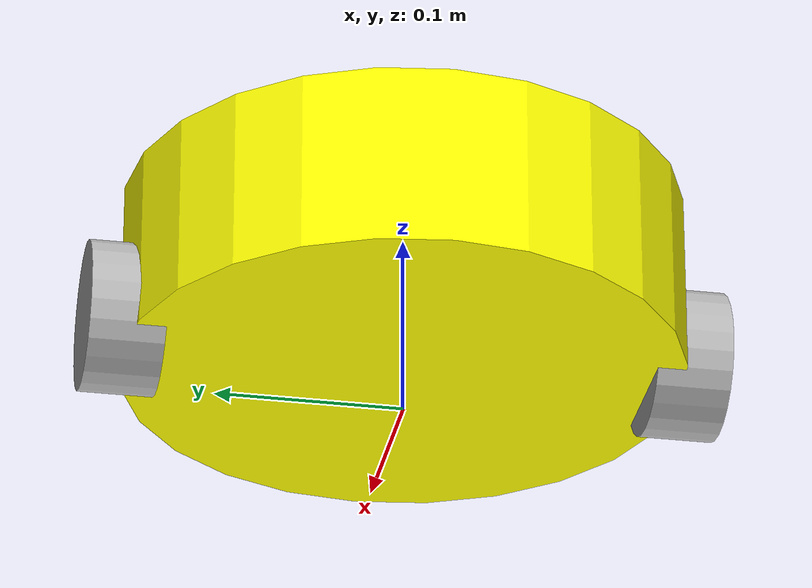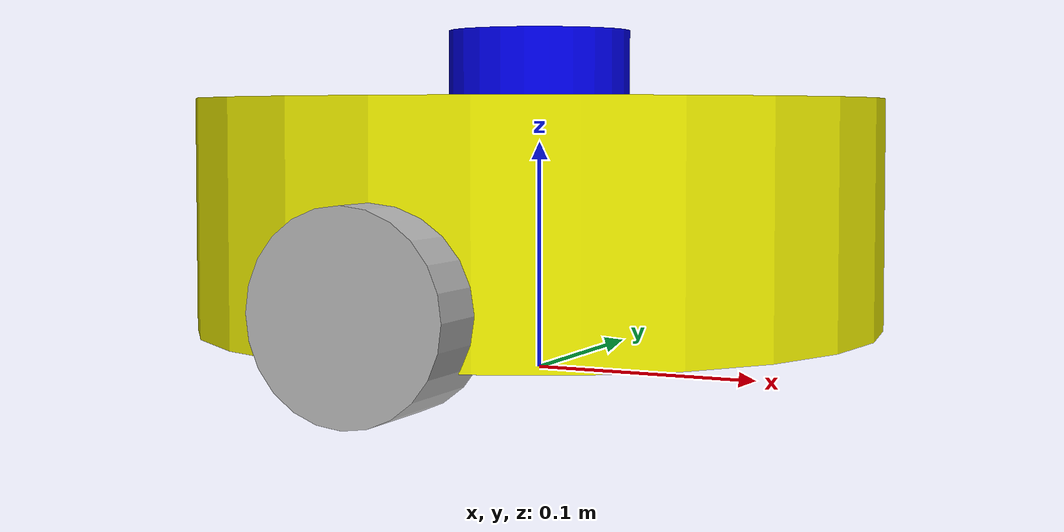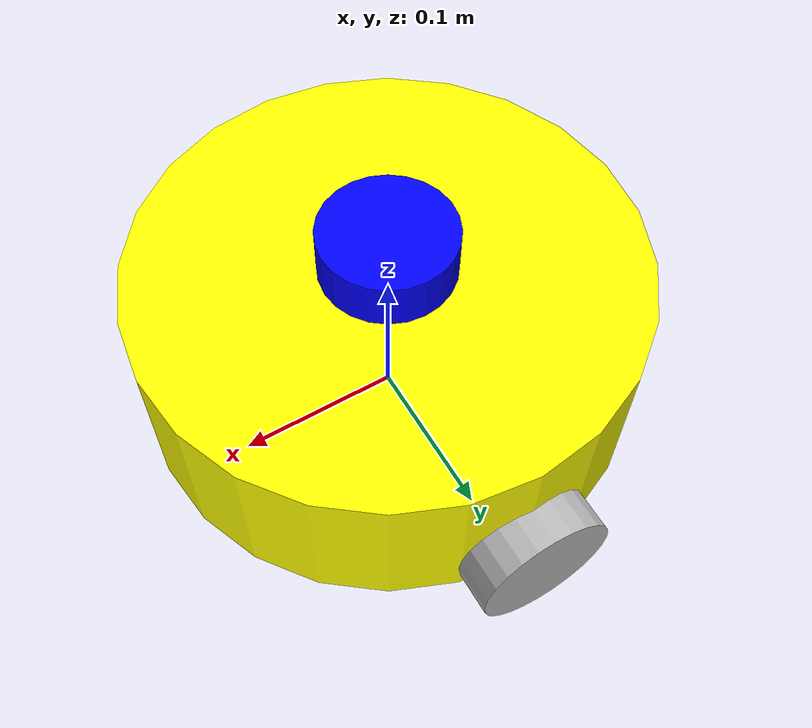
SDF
<?xml version="1.0"?>
<sdf version='1.11'>
  <model name='dx_bot'>

    <link name='footprint'>
      <pose>0 0 0 0 0 0</pose>
      <inertial>
        <mass>2</mass>
        <inertia>
          <ixx>0.0141</ixx>
          <iyy>0.0104</iyy>
          <izz>0.0154</izz>
        </inertia>
      </inertial>

      <collision name='base_collision'>
        <pose>0 0 0.069 0 0 0</pose>
        <geometry>
          <cylinder>
            <length>0.1</length>
            <radius>0.15</radius>
          </cylinder>
        </geometry>
      </collision>

      <visual name='base_visual'>
        <pose>0 0 0.069 0 0 0</pose>
        <geometry>
          <cylinder>
            <length>0.1</length>
            <radius>0.15</radius>
          </cylinder>
        </geometry>
        <material>
          <diffuse>1 1 0 1</diffuse>
        </material>
      </visual>
    </link>

    <link name='link_wheel_1'>
      <pose>0 0.15 0.04 0 1.5708 1.5708</pose> <inertial>
        <mass>0.1</mass>
      </inertial>
      <collision name='wheel1_collision'>
        <geometry>
          <cylinder>
            <radius>0.04</radius>
            <length>0.04</length>
          </cylinder>
        </geometry>
      </collision>
      <visual name='wheel1_visual'>
        <geometry>
          <cylinder>
            <radius>0.04</radius>
            <length>0.04</length>
          </cylinder>
        </geometry>
      </visual>
    </link>

    <joint name='joint_wheel_1' type='continuous'>
      <parent>footprint</parent>
      <child>link_wheel_1</child>
      <axis>
        <xyz>0 1 0</xyz> </axis>
    </joint>

    <link name='link_wheel_2'>
      <pose>0 -0.15 0.04 0 1.5708 1.5708</pose> <inertial>
        <mass>0.1</mass>
      </inertial>
      <collision name='wheel2_collision'>
        <geometry>
          <cylinder>
            <radius>0.04</radius>
            <length>0.04</length>
          </cylinder>
        </geometry>
      </collision>
      <visual name='wheel2_visual'>
        <geometry>
          <cylinder>
            <radius>0.04</radius>
            <length>0.04</length>
          </cylinder>
        </geometry>
      </visual>
    </link>

    <joint name='joint_wheel_2' type='continuous'>
      <parent>footprint</parent>
      <child>link_wheel_2</child>
      <axis>
        <xyz>0 1 0</xyz> </axis>
    </joint>

    <link name="link_laser">
      <pose>0 0 0.134 0 0 0</pose>
      <inertial>
        <mass>0.1</mass>
        <inertia>
          <ixx>1e-4</ixx>
          <iyy>1e-4</iyy>
          <izz>1e-4</izz>
        </inertia>
      </inertial>
      <collision name="laser_collision">
        <geometry>
          <cylinder>
            <radius>0.04</radius>
            <length>0.03</length>
          </cylinder>
        </geometry>
      </collision>
      <visual name="laser_visual">
        <geometry>
          <cylinder>
            <radius>0.04</radius>
            <length>0.03</length>
          </cylinder>
        </geometry>
        <material>
          <diffuse>0 0 1 1</diffuse>
        </material>
      </visual>

      <sensor name="hokuyo_lidar" type="gpu_lidar">
        <pose>0 0 0 0 0 0</pose>
        <update_rate>10</update_rate>
        <always_on>1</always_on>
        <visualize>true</visualize>
        <lidar>
          <scan>
            <horizontal>
              <samples>360</samples>
              <min_angle>-3.1416</min_angle>
              <max_angle>3.1416</max_angle>
            </horizontal>
          </scan>
          <range>
            <min>0.1</min>
            <max>10.0</max>
          </range>
        </lidar>
        <topic>/scan</topic>
      </sensor>
    </link>

    <joint name="joint_laser" type="fixed">
      <parent>footprint</parent>
      <child>link_laser</child>
    </joint>

    <plugin
      filename="gz-sim-diff-drive-system"
      name="gz::sim::systems::DiffDrive">
      <left_joint>joint_wheel_1</left_joint>
      <right_joint>joint_wheel_2</right_joint>
      <wheel_separation>0.3</wheel_separation>
      <wheel_radius>0.04</wheel_radius>
      <topic>cmd_vel</topic>
    </plugin>

  </model>
</sdf>
